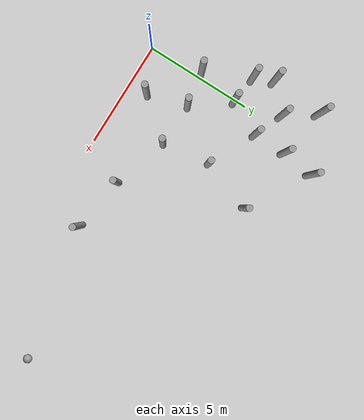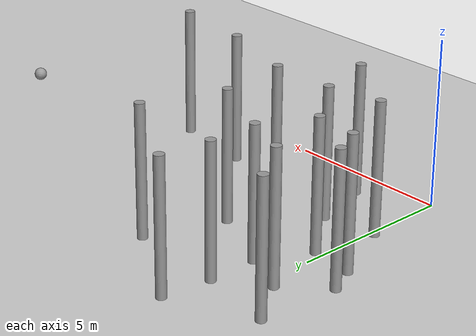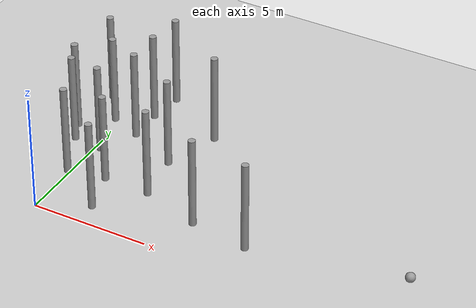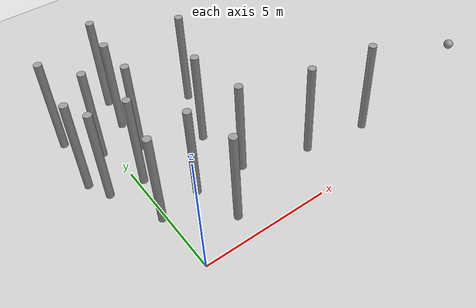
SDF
<sdf version="1.6">
 <world name="default">
  <model name="ground_plane">
   <static>1</static>
   <link name="link">
    <collision name="collision">
     <geometry><plane><normal>0 0 1</normal><size>100 100</size></plane></geometry>
     <surface><friction><ode><mu>100</mu><mu2>50</mu2></ode></friction></surface>
    </collision>
    <visual name="visual">
     <cast_shadows>0</cast_shadows>
     <geometry><plane><normal>0 0 1</normal><size>100 100</size></plane></geometry>
     <material>
      <script><uri>file://media/materials/scripts/gazebo.material</uri><name>Gazebo/Grey</name></script>
     </material>
    </visual>
   </link>
  </model>
  <model name="unit_cylinder_clone_0">
   <link name="link">
    <inertial>
     <mass>1000</mass>
     <inertia><ixx>145.833</ixx><ixy>0</ixy><ixz>0</ixz><iyy>145.833</iyy><iyz>0</iyz><izz>125</izz></inertia>
    </inertial>
    <visual name="visual">
     <geometry><cylinder><radius>0.15</radius><length>4</length></cylinder></geometry>
     <material>
      <script><name>Gazebo/Grey</name><uri>file://media/materials/scripts/gazebo.material</uri></script>
      <shader type="pixel"><normal_map>__default__</normal_map></shader>
      <ambient>0.3 0.3 0.3 1</ambient>
      <diffuse>0.7 0.7 0.7 1</diffuse>
      <specular>0.01 0.01 0.01 1</specular>
      <emissive>0 0 0 1</emissive>
     </material>
    </visual>
    <collision name="collision">
     <geometry><cylinder><radius>0.15</radius><length>4</length></cylinder></geometry>
     <surface>
      <friction>
       <ode><mu>1</mu><mu2>1</mu2><fdir1>0 0 0</fdir1><slip1>0</slip1><slip2>0</slip2></ode>
       <torsional>
        <coefficient>1</coefficient>
        <patch_radius>0</patch_radius>
        <surface_radius>0</surface_radius>
        <use_patch_radius>1</use_patch_radius>
        <ode><slip>0</slip></ode>
       </torsional>
      </friction>
      <bounce><restitution_coefficient>0</restitution_coefficient><threshold>1e+06</threshold></bounce>
      <contact>
       <collide_without_contact>0</collide_without_contact>
       <collide_without_contact_bitmask>1</collide_without_contact_bitmask>
       <collide_bitmask>1</collide_bitmask>
       <ode>
        <soft_cfm>0</soft_cfm>
        <soft_erp>0.2</soft_erp>
        <kp>1e+13</kp>
        <kd>1</kd>
        <max_vel>0.01</max_vel>
        <min_depth>0</min_depth>
       </ode>
       <bullet>
        <split_impulse>1</split_impulse>
        <split_impulse_penetration_threshold>-0.01</split_impulse_penetration_threshold>
        <soft_cfm>0</soft_cfm>
        <soft_erp>0.2</soft_erp>
        <kp>1e+13</kp>
        <kd>1</kd>
       </bullet>
      </contact>
     </surface>
    </collision>
   </link>
   <static>0</static>
   <pose>-0.126051 2.52884 1.99999 0 -0 0.00133</pose>
  </model>
  <model name="unit_cylinder_clone_1">
   <link name="link">
    <inertial>
     <mass>1000</mass>
     <inertia><ixx>145.833</ixx><ixy>0</ixy><ixz>0</ixz><iyy>145.833</iyy><iyz>0</iyz><izz>125</izz></inertia>
    </inertial>
    <visual name="visual">
     <geometry><cylinder><radius>0.15</radius><length>4</length></cylinder></geometry>
     <material>
      <script><name>Gazebo/Grey</name><uri>file://media/materials/scripts/gazebo.material</uri></script>
      <shader type="pixel"><normal_map>__default__</normal_map></shader>
      <ambient>0.3 0.3 0.3 1</ambient>
      <diffuse>0.7 0.7 0.7 1</diffuse>
      <specular>0.01 0.01 0.01 1</specular>
      <emissive>0 0 0 1</emissive>
     </material>
    </visual>
    <collision name="collision">
     <geometry><cylinder><radius>0.15</radius><length>4</length></cylinder></geometry>
     <surface>
      <friction>
       <ode><mu>1</mu><mu2>1</mu2><fdir1>0 0 0</fdir1><slip1>0</slip1><slip2>0</slip2></ode>
       <torsional>
        <coefficient>1</coefficient>
        <patch_radius>0</patch_radius>
        <surface_radius>0</surface_radius>
        <use_patch_radius>1</use_patch_radius>
        <ode><slip>0</slip></ode>
       </torsional>
      </friction>
      <bounce><restitution_coefficient>0</restitution_coefficient><threshold>1e+06</threshold></bounce>
      <contact>
       <collide_without_contact>0</collide_without_contact>
       <collide_without_contact_bitmask>1</collide_without_contact_bitmask>
       <collide_bitmask>1</collide_bitmask>
       <ode>
        <soft_cfm>0</soft_cfm>
        <soft_erp>0.2</soft_erp>
        <kp>1e+13</kp>
        <kd>1</kd>
        <max_vel>0.01</max_vel>
        <min_depth>0</min_depth>
       </ode>
       <bullet>
        <split_impulse>1</split_impulse>
        <split_impulse_penetration_threshold>-0.01</split_impulse_penetration_threshold>
        <soft_cfm>0</soft_cfm>
        <soft_erp>0.2</soft_erp>
        <kp>1e+13</kp>
        <kd>1</kd>
       </bullet>
      </contact>
     </surface>
    </collision>
   </link>
   <static>0</static>
   <pose>1.48874 2.81377 1.99999 0 0 -0.000338</pose>
  </model>
  <model name="unit_cylinder_clone_2">
   <link name="link">
    <inertial>
     <mass>1000</mass>
     <inertia><ixx>145.833</ixx><ixy>0</ixy><ixz>0</ixz><iyy>145.833</iyy><iyz>0</iyz><izz>125</izz></inertia>
    </inertial>
    <visual name="visual">
     <geometry><cylinder><radius>0.15</radius><length>4</length></cylinder></geometry>
     <material>
      <script><name>Gazebo/Grey</name><uri>file://media/materials/scripts/gazebo.material</uri></script>
      <shader type="pixel"><normal_map>__default__</normal_map></shader>
      <ambient>0.3 0.3 0.3 1</ambient>
      <diffuse>0.7 0.7 0.7 1</diffuse>
      <specular>0.01 0.01 0.01 1</specular>
      <emissive>0 0 0 1</emissive>
     </material>
    </visual>
    <collision name="collision">
     <geometry><cylinder><radius>0.15</radius><length>4</length></cylinder></geometry>
     <surface>
      <friction>
       <ode><mu>1</mu><mu2>1</mu2><fdir1>0 0 0</fdir1><slip1>0</slip1><slip2>0</slip2></ode>
       <torsional>
        <coefficient>1</coefficient>
        <patch_radius>0</patch_radius>
        <surface_radius>0</surface_radius>
        <use_patch_radius>1</use_patch_radius>
        <ode><slip>0</slip></ode>
       </torsional>
      </friction>
      <bounce><restitution_coefficient>0</restitution_coefficient><threshold>1e+06</threshold></bounce>
      <contact>
       <collide_without_contact>0</collide_without_contact>
       <collide_without_contact_bitmask>1</collide_without_contact_bitmask>
       <collide_bitmask>1</collide_bitmask>
       <ode>
        <soft_cfm>0</soft_cfm>
        <soft_erp>0.2</soft_erp>
        <kp>1e+13</kp>
        <kd>1</kd>
        <max_vel>0.01</max_vel>
        <min_depth>0</min_depth>
       </ode>
       <bullet>
        <split_impulse>1</split_impulse>
        <split_impulse_penetration_threshold>-0.01</split_impulse_penetration_threshold>
        <soft_cfm>0</soft_cfm>
        <soft_erp>0.2</soft_erp>
        <kp>1e+13</kp>
        <kd>1</kd>
       </bullet>
      </contact>
     </surface>
    </collision>
   </link>
   <static>0</static>
   <pose>-1.07339 4.59004 1.99999 0 -0 0.001251</pose>
  </model>
  <model name="unit_cylinder_clone_3">
   <link name="link">
    <inertial>
     <mass>1000</mass>
     <inertia><ixx>145.833</ixx><ixy>0</ixy><ixz>0</ixz><iyy>145.833</iyy><iyz>0</iyz><izz>125</izz></inertia>
    </inertial>
    <visual name="visual">
     <geometry><cylinder><radius>0.15</radius><length>4</length></cylinder></geometry>
     <material>
      <script><name>Gazebo/Grey</name><uri>file://media/materials/scripts/gazebo.material</uri></script>
      <shader type="pixel"><normal_map>__default__</normal_map></shader>
      <ambient>0.3 0.3 0.3 1</ambient>
      <diffuse>0.7 0.7 0.7 1</diffuse>
      <specular>0.01 0.01 0.01 1</specular>
      <emissive>0 0 0 1</emissive>
     </material>
    </visual>
    <collision name="collision">
     <geometry><cylinder><radius>0.15</radius><length>4</length></cylinder></geometry>
     <surface>
      <friction>
       <ode><mu>1</mu><mu2>1</mu2><fdir1>0 0 0</fdir1><slip1>0</slip1><slip2>0</slip2></ode>
       <torsional>
        <coefficient>1</coefficient>
        <patch_radius>0</patch_radius>
        <surface_radius>0</surface_radius>
        <use_patch_radius>1</use_patch_radius>
        <ode><slip>0</slip></ode>
       </torsional>
      </friction>
      <bounce><restitution_coefficient>0</restitution_coefficient><threshold>1e+06</threshold></bounce>
      <contact>
       <collide_without_contact>0</collide_without_contact>
       <collide_without_contact_bitmask>1</collide_without_contact_bitmask>
       <collide_bitmask>1</collide_bitmask>
       <ode>
        <soft_cfm>0</soft_cfm>
        <soft_erp>0.2</soft_erp>
        <kp>1e+13</kp>
        <kd>1</kd>
        <max_vel>0.01</max_vel>
        <min_depth>0</min_depth>
       </ode>
       <bullet>
        <split_impulse>1</split_impulse>
        <split_impulse_penetration_threshold>-0.01</split_impulse_penetration_threshold>
        <soft_cfm>0</soft_cfm>
        <soft_erp>0.2</soft_erp>
        <kp>1e+13</kp>
        <kd>1</kd>
       </bullet>
      </contact>
     </surface>
    </collision>
   </link>
   <static>0</static>
   <pose>1.00001 6.00007 1.99999 0 -0 0.00126</pose>
  </model>
  <model name="unit_cylinder_clone_18">
   <link name="link">
    <inertial>
     <mass>1000</mass>
     <inertia><ixx>145.833</ixx><ixy>0</ixy><ixz>0</ixz><iyy>145.833</iyy><iyz>0</iyz><izz>125</izz></inertia>
    </inertial>
    <visual name="visual">
     <geometry><cylinder><radius>0.15</radius><length>4</length></cylinder></geometry>
     <material>
      <script><name>Gazebo/Grey</name><uri>file://media/materials/scripts/gazebo.material</uri></script>
      <shader type="pixel"><normal_map>__default__</normal_map></shader>
      <ambient>0.3 0.3 0.3 1</ambient>
      <diffuse>0.7 0.7 0.7 1</diffuse>
      <specular>0.01 0.01 0.01 1</specular>
      <emissive>0 0 0 1</emissive>
     </material>
    </visual>
    <collision name="collision">
     <geometry><cylinder><radius>0.15</radius><length>4</length></cylinder></geometry>
     <surface>
      <friction>
       <ode><mu>1</mu><mu2>1</mu2><fdir1>0 0 0</fdir1><slip1>0</slip1><slip2>0</slip2></ode>
       <torsional>
        <coefficient>1</coefficient>
        <patch_radius>0</patch_radius>
        <surface_radius>0</surface_radius>
        <use_patch_radius>1</use_patch_radius>
        <ode><slip>0</slip></ode>
       </torsional>
      </friction>
      <bounce><restitution_coefficient>0</restitution_coefficient><threshold>1e+06</threshold></bounce>
      <contact>
       <collide_without_contact>0</collide_without_contact>
       <collide_without_contact_bitmask>1</collide_without_contact_bitmask>
       <collide_bitmask>1</collide_bitmask>
       <ode>
        <soft_cfm>0</soft_cfm>
        <soft_erp>0.2</soft_erp>
        <kp>1e+13</kp>
        <kd>1</kd>
        <max_vel>0.01</max_vel>
        <min_depth>0</min_depth>
       </ode>
       <bullet>
        <split_impulse>1</split_impulse>
        <split_impulse_penetration_threshold>-0.01</split_impulse_penetration_threshold>
        <soft_cfm>0</soft_cfm>
        <soft_erp>0.2</soft_erp>
        <kp>1e+13</kp>
        <kd>1</kd>
       </bullet>
      </contact>
     </surface>
    </collision>
   </link>
   <static>0</static>
   <pose>1.18443 9.01135 2 0 -0 0.00132</pose>
  </model>
  <model name="unit_cylinder_clone_20">
   <link name="link">
    <inertial>
     <mass>1000</mass>
     <inertia><ixx>145.833</ixx><ixy>0</ixy><ixz>0</ixz><iyy>145.833</iyy><iyz>0</iyz><izz>125</izz></inertia>
    </inertial>
    <visual name="visual">
     <geometry><cylinder><radius>0.15</radius><length>4</length></cylinder></geometry>
     <material>
      <script><name>Gazebo/Grey</name><uri>file://media/materials/scripts/gazebo.material</uri></script>
      <shader type="pixel"><normal_map>__default__</normal_map></shader>
      <ambient>0.3 0.3 0.3 1</ambient>
      <diffuse>0.7 0.7 0.7 1</diffuse>
      <specular>0.01 0.01 0.01 1</specular>
      <emissive>0 0 0 1</emissive>
     </material>
    </visual>
    <collision name="collision">
     <geometry><cylinder><radius>0.15</radius><length>4</length></cylinder></geometry>
     <surface>
      <friction>
       <ode><mu>1</mu><mu2>1</mu2><fdir1>0 0 0</fdir1><slip1>0</slip1><slip2>0</slip2></ode>
       <torsional>
        <coefficient>1</coefficient>
        <patch_radius>0</patch_radius>
        <surface_radius>0</surface_radius>
        <use_patch_radius>1</use_patch_radius>
        <ode><slip>0</slip></ode>
       </torsional>
      </friction>
      <bounce><restitution_coefficient>0</restitution_coefficient><threshold>1e+06</threshold></bounce>
      <contact>
       <collide_without_contact>0</collide_without_contact>
       <collide_without_contact_bitmask>1</collide_without_contact_bitmask>
       <collide_bitmask>1</collide_bitmask>
       <ode>
        <soft_cfm>0</soft_cfm>
        <soft_erp>0.2</soft_erp>
        <kp>1e+13</kp>
        <kd>1</kd>
        <max_vel>0.01</max_vel>
        <min_depth>0</min_depth>
       </ode>
       <bullet>
        <split_impulse>1</split_impulse>
        <split_impulse_penetration_threshold>-0.01</split_impulse_penetration_threshold>
        <soft_cfm>0</soft_cfm>
        <soft_erp>0.2</soft_erp>
        <kp>1e+13</kp>
        <kd>1</kd>
       </bullet>
      </contact>
     </surface>
    </collision>
   </link>
   <static>0</static>
   <pose>3.9803 7.3232 1.99999 0 -0 0.001389</pose>
  </model>
  <model name="unit_cylinder_clone_21">
   <link name="link">
    <inertial>
     <mass>1000</mass>
     <inertia><ixx>145.833</ixx><ixy>0</ixy><ixz>0</ixz><iyy>145.833</iyy><iyz>0</iyz><izz>125</izz></inertia>
    </inertial>
    <visual name="visual">
     <geometry><cylinder><radius>0.15</radius><length>4</length></cylinder></geometry>
     <material>
      <script><name>Gazebo/Grey</name><uri>file://media/materials/scripts/gazebo.material</uri></script>
      <shader type="pixel"><normal_map>__default__</normal_map></shader>
      <ambient>0.3 0.3 0.3 1</ambient>
      <diffuse>0.7 0.7 0.7 1</diffuse>
      <specular>0.01 0.01 0.01 1</specular>
      <emissive>0 0 0 1</emissive>
     </material>
    </visual>
    <collision name="collision">
     <geometry><cylinder><radius>0.15</radius><length>4</length></cylinder></geometry>
     <surface>
      <friction>
       <ode><mu>1</mu><mu2>1</mu2><fdir1>0 0 0</fdir1><slip1>0</slip1><slip2>0</slip2></ode>
       <torsional>
        <coefficient>1</coefficient>
        <patch_radius>0</patch_radius>
        <surface_radius>0</surface_radius>
        <use_patch_radius>1</use_patch_radius>
        <ode><slip>0</slip></ode>
       </torsional>
      </friction>
      <bounce><restitution_coefficient>0</restitution_coefficient><threshold>1e+06</threshold></bounce>
      <contact>
       <collide_without_contact>0</collide_without_contact>
       <collide_without_contact_bitmask>1</collide_without_contact_bitmask>
       <collide_bitmask>1</collide_bitmask>
       <ode>
        <soft_cfm>0</soft_cfm>
        <soft_erp>0.2</soft_erp>
        <kp>1e+13</kp>
        <kd>1</kd>
        <max_vel>0.01</max_vel>
        <min_depth>0</min_depth>
       </ode>
       <bullet>
        <split_impulse>1</split_impulse>
        <split_impulse_penetration_threshold>-0.01</split_impulse_penetration_threshold>
        <soft_cfm>0</soft_cfm>
        <soft_erp>0.2</soft_erp>
        <kp>1e+13</kp>
        <kd>1</kd>
       </bullet>
      </contact>
     </surface>
    </collision>
   </link>
   <static>0</static>
   <pose>-1.30192 7.90799 1.99999 0 0 -0.000854</pose>
  </model>
  <model name="unit_cylinder_clone_22">
   <link name="link">
    <inertial>
     <mass>1000</mass>
     <inertia><ixx>145.833</ixx><ixy>0</ixy><ixz>0</ixz><iyy>145.833</iyy><iyz>0</iyz><izz>125</izz></inertia>
    </inertial>
    <visual name="visual">
     <geometry><cylinder><radius>0.15</radius><length>4</length></cylinder></geometry>
     <material>
      <script><name>Gazebo/Grey</name><uri>file://media/materials/scripts/gazebo.material</uri></script>
      <shader type="pixel"><normal_map>__default__</normal_map></shader>
      <ambient>0.3 0.3 0.3 1</ambient>
      <diffuse>0.7 0.7 0.7 1</diffuse>
      <specular>0.01 0.01 0.01 1</specular>
      <emissive>0 0 0 1</emissive>
     </material>
    </visual>
    <collision name="collision">
     <geometry><cylinder><radius>0.15</radius><length>4</length></cylinder></geometry>
     <surface>
      <friction>
       <ode><mu>1</mu><mu2>1</mu2><fdir1>0 0 0</fdir1><slip1>0</slip1><slip2>0</slip2></ode>
       <torsional>
        <coefficient>1</coefficient>
        <patch_radius>0</patch_radius>
        <surface_radius>0</surface_radius>
        <use_patch_radius>1</use_patch_radius>
        <ode><slip>0</slip></ode>
       </torsional>
      </friction>
      <bounce><restitution_coefficient>0</restitution_coefficient><threshold>1e+06</threshold></bounce>
      <contact>
       <collide_without_contact>0</collide_without_contact>
       <collide_without_contact_bitmask>1</collide_without_contact_bitmask>
       <collide_bitmask>1</collide_bitmask>
       <ode>
        <soft_cfm>0</soft_cfm>
        <soft_erp>0.2</soft_erp>
        <kp>1e+13</kp>
        <kd>1</kd>
        <max_vel>0.01</max_vel>
        <min_depth>0</min_depth>
       </ode>
       <bullet>
        <split_impulse>1</split_impulse>
        <split_impulse_penetration_threshold>-0.01</split_impulse_penetration_threshold>
        <soft_cfm>0</soft_cfm>
        <soft_erp>0.2</soft_erp>
        <kp>1e+13</kp>
        <kd>1</kd>
       </bullet>
      </contact>
     </surface>
    </collision>
   </link>
   <static>0</static>
   <pose>0.989173 7.51328 2 0 -0 0.001145</pose>
  </model>
  <model name="unit_cylinder_clone_23">
   <link name="link">
    <inertial>
     <mass>1000</mass>
     <inertia><ixx>145.833</ixx><ixy>0</ixy><ixz>0</ixz><iyy>145.833</iyy><iyz>0</iyz><izz>125</izz></inertia>
    </inertial>
    <visual name="visual">
     <geometry><cylinder><radius>0.15</radius><length>4</length></cylinder></geometry>
     <material>
      <script><name>Gazebo/Grey</name><uri>file://media/materials/scripts/gazebo.material</uri></script>
      <shader type="pixel"><normal_map>__default__</normal_map></shader>
      <ambient>0.3 0.3 0.3 1</ambient>
      <diffuse>0.7 0.7 0.7 1</diffuse>
      <specular>0.01 0.01 0.01 1</specular>
      <emissive>0 0 0 1</emissive>
     </material>
    </visual>
    <collision name="collision">
     <geometry><cylinder><radius>0.15</radius><length>4</length></cylinder></geometry>
     <surface>
      <friction>
       <ode><mu>1</mu><mu2>1</mu2><fdir1>0 0 0</fdir1><slip1>0</slip1><slip2>0</slip2></ode>
       <torsional>
        <coefficient>1</coefficient>
        <patch_radius>0</patch_radius>
        <surface_radius>0</surface_radius>
        <use_patch_radius>1</use_patch_radius>
        <ode><slip>0</slip></ode>
       </torsional>
      </friction>
      <bounce><restitution_coefficient>0</restitution_coefficient><threshold>1e+06</threshold></bounce>
      <contact>
       <collide_without_contact>0</collide_without_contact>
       <collide_without_contact_bitmask>1</collide_without_contact_bitmask>
       <collide_bitmask>1</collide_bitmask>
       <ode>
        <soft_cfm>0</soft_cfm>
        <soft_erp>0.2</soft_erp>
        <kp>1e+13</kp>
        <kd>1</kd>
        <max_vel>0.01</max_vel>
        <min_depth>0</min_depth>
       </ode>
       <bullet>
        <split_impulse>1</split_impulse>
        <split_impulse_penetration_threshold>-0.01</split_impulse_penetration_threshold>
        <soft_cfm>0</soft_cfm>
        <soft_erp>0.2</soft_erp>
        <kp>1e+13</kp>
        <kd>1</kd>
       </bullet>
      </contact>
     </surface>
    </collision>
   </link>
   <static>0</static>
   <pose>0.228998 4.44918 1.99999 0 -0 0.000973</pose>
  </model>
  <model name="unit_cylinder_clone_24">
   <link name="link">
    <inertial>
     <mass>1000</mass>
     <inertia><ixx>145.833</ixx><ixy>0</ixy><ixz>0</ixz><iyy>145.833</iyy><iyz>0</iyz><izz>125</izz></inertia>
    </inertial>
    <visual name="visual">
     <geometry><cylinder><radius>0.15</radius><length>4</length></cylinder></geometry>
     <material>
      <script><name>Gazebo/Grey</name><uri>file://media/materials/scripts/gazebo.material</uri></script>
      <shader type="pixel"><normal_map>__default__</normal_map></shader>
      <ambient>0.3 0.3 0.3 1</ambient>
      <diffuse>0.7 0.7 0.7 1</diffuse>
      <specular>0.01 0.01 0.01 1</specular>
      <emissive>0 0 0 1</emissive>
     </material>
    </visual>
    <collision name="collision">
     <geometry><cylinder><radius>0.15</radius><length>4</length></cylinder></geometry>
     <surface>
      <friction>
       <ode><mu>1</mu><mu2>1</mu2><fdir1>0 0 0</fdir1><slip1>0</slip1><slip2>0</slip2></ode>
       <torsional>
        <coefficient>1</coefficient>
        <patch_radius>0</patch_radius>
        <surface_radius>0</surface_radius>
        <use_patch_radius>1</use_patch_radius>
        <ode><slip>0</slip></ode>
       </torsional>
      </friction>
      <bounce><restitution_coefficient>0</restitution_coefficient><threshold>1e+06</threshold></bounce>
      <contact>
       <collide_without_contact>0</collide_without_contact>
       <collide_without_contact_bitmask>1</collide_without_contact_bitmask>
       <collide_bitmask>1</collide_bitmask>
       <ode>
        <soft_cfm>0</soft_cfm>
        <soft_erp>0.2</soft_erp>
        <kp>1e+13</kp>
        <kd>1</kd>
        <max_vel>0.01</max_vel>
        <min_depth>0</min_depth>
       </ode>
       <bullet>
        <split_impulse>1</split_impulse>
        <split_impulse_penetration_threshold>-0.01</split_impulse_penetration_threshold>
        <soft_cfm>0</soft_cfm>
        <soft_erp>0.2</soft_erp>
        <kp>1e+13</kp>
        <kd>1</kd>
       </bullet>
      </contact>
     </surface>
    </collision>
   </link>
   <static>0</static>
   <pose>3.1593 4.96127 2 0 -0 0.000918</pose>
  </model>
  <model name="unit_cylinder_clone_25">
   <link name="link">
    <inertial>
     <mass>1000</mass>
     <inertia><ixx>145.833</ixx><ixy>0</ixy><ixz>0</ixz><iyy>145.833</iyy><iyz>0</iyz><izz>125</izz></inertia>
    </inertial>
    <visual name="visual">
     <geometry><cylinder><radius>0.15</radius><length>4</length></cylinder></geometry>
     <material>
      <script><name>Gazebo/Grey</name><uri>file://media/materials/scripts/gazebo.material</uri></script>
      <shader type="pixel"><normal_map>__default__</normal_map></shader>
      <ambient>0.3 0.3 0.3 1</ambient>
      <diffuse>0.7 0.7 0.7 1</diffuse>
      <specular>0.01 0.01 0.01 1</specular>
      <emissive>0 0 0 1</emissive>
     </material>
    </visual>
    <collision name="collision">
     <geometry><cylinder><radius>0.15</radius><length>4</length></cylinder></geometry>
     <surface>
      <friction>
       <ode><mu>1</mu><mu2>1</mu2><fdir1>0 0 0</fdir1><slip1>0</slip1><slip2>0</slip2></ode>
       <torsional>
        <coefficient>1</coefficient>
        <patch_radius>0</patch_radius>
        <surface_radius>0</surface_radius>
        <use_patch_radius>1</use_patch_radius>
        <ode><slip>0</slip></ode>
       </torsional>
      </friction>
      <bounce><restitution_coefficient>0</restitution_coefficient><threshold>1e+06</threshold></bounce>
      <contact>
       <collide_without_contact>0</collide_without_contact>
       <collide_without_contact_bitmask>1</collide_without_contact_bitmask>
       <collide_bitmask>1</collide_bitmask>
       <ode>
        <soft_cfm>0</soft_cfm>
        <soft_erp>0.2</soft_erp>
        <kp>1e+13</kp>
        <kd>1</kd>
        <max_vel>0.01</max_vel>
        <min_depth>0</min_depth>
       </ode>
       <bullet>
        <split_impulse>1</split_impulse>
        <split_impulse_penetration_threshold>-0.01</split_impulse_penetration_threshold>
        <soft_cfm>0</soft_cfm>
        <soft_erp>0.2</soft_erp>
        <kp>1e+13</kp>
        <kd>1</kd>
       </bullet>
      </contact>
     </surface>
    </collision>
   </link>
   <static>0</static>
   <pose>-1.48648 5.46286 2 0 -0 0.001333</pose>
  </model>
  <model name="unit_cylinder_clone_28">
   <link name="link">
    <inertial>
     <mass>1000</mass>
     <inertia><ixx>145.833</ixx><ixy>0</ixy><ixz>0</ixz><iyy>145.833</iyy><iyz>0</iyz><izz>125</izz></inertia>
    </inertial>
    <visual name="visual">
     <geometry><cylinder><radius>0.15</radius><length>4</length></cylinder></geometry>
     <material>
      <script><name>Gazebo/Grey</name><uri>file://media/materials/scripts/gazebo.material</uri></script>
      <shader type="pixel"><normal_map>__default__</normal_map></shader>
      <ambient>0.3 0.3 0.3 1</ambient>
      <diffuse>0.7 0.7 0.7 1</diffuse>
      <specular>0.01 0.01 0.01 1</specular>
      <emissive>0 0 0 1</emissive>
     </material>
    </visual>
    <collision name="collision">
     <geometry><cylinder><radius>0.15</radius><length>4</length></cylinder></geometry>
     <surface>
      <friction>
       <ode><mu>1</mu><mu2>1</mu2><fdir1>0 0 0</fdir1><slip1>0</slip1><slip2>0</slip2></ode>
       <torsional>
        <coefficient>1</coefficient>
        <patch_radius>0</patch_radius>
        <surface_radius>0</surface_radius>
        <use_patch_radius>1</use_patch_radius>
        <ode><slip>0</slip></ode>
       </torsional>
      </friction>
      <bounce><restitution_coefficient>0</restitution_coefficient><threshold>1e+06</threshold></bounce>
      <contact>
       <collide_without_contact>0</collide_without_contact>
       <collide_without_contact_bitmask>1</collide_without_contact_bitmask>
       <collide_bitmask>1</collide_bitmask>
       <ode>
        <soft_cfm>0</soft_cfm>
        <soft_erp>0.2</soft_erp>
        <kp>1e+13</kp>
        <kd>1</kd>
        <max_vel>0.01</max_vel>
        <min_depth>0</min_depth>
       </ode>
       <bullet>
        <split_impulse>1</split_impulse>
        <split_impulse_penetration_threshold>-0.01</split_impulse_penetration_threshold>
        <soft_cfm>0</soft_cfm>
        <soft_erp>0.2</soft_erp>
        <kp>1e+13</kp>
        <kd>1</kd>
       </bullet>
      </contact>
     </surface>
    </collision>
   </link>
   <static>0</static>
   <pose>2.00001 1.00007 1.99999 0 -0 0.001399</pose>
  </model>
  <model name="unit_cylinder_clone_29">
   <link name="link">
    <inertial>
     <mass>1000</mass>
     <inertia><ixx>145.833</ixx><ixy>0</ixy><ixz>0</ixz><iyy>145.833</iyy><iyz>0</iyz><izz>125</izz></inertia>
    </inertial>
    <visual name="visual">
     <geometry><cylinder><radius>0.15</radius><length>4</length></cylinder></geometry>
     <material>
      <script><name>Gazebo/Grey</name><uri>file://media/materials/scripts/gazebo.material</uri></script>
      <shader type="pixel"><normal_map>__default__</normal_map></shader>
      <ambient>0.3 0.3 0.3 1</ambient>
      <diffuse>0.7 0.7 0.7 1</diffuse>
      <specular>0.01 0.01 0.01 1</specular>
      <emissive>0 0 0 1</emissive>
     </material>
    </visual>
    <collision name="collision">
     <geometry><cylinder><radius>0.15</radius><length>4</length></cylinder></geometry>
     <surface>
      <friction>
       <ode><mu>1</mu><mu2>1</mu2><fdir1>0 0 0</fdir1><slip1>0</slip1><slip2>0</slip2></ode>
       <torsional>
        <coefficient>1</coefficient>
        <patch_radius>0</patch_radius>
        <surface_radius>0</surface_radius>
        <use_patch_radius>1</use_patch_radius>
        <ode><slip>0</slip></ode>
       </torsional>
      </friction>
      <bounce><restitution_coefficient>0</restitution_coefficient><threshold>1e+06</threshold></bounce>
      <contact>
       <collide_without_contact>0</collide_without_contact>
       <collide_without_contact_bitmask>1</collide_without_contact_bitmask>
       <collide_bitmask>1</collide_bitmask>
       <ode>
        <soft_cfm>0</soft_cfm>
        <soft_erp>0.2</soft_erp>
        <kp>1e+13</kp>
        <kd>1</kd>
        <max_vel>0.01</max_vel>
        <min_depth>0</min_depth>
       </ode>
       <bullet>
        <split_impulse>1</split_impulse>
        <split_impulse_penetration_threshold>-0.01</split_impulse_penetration_threshold>
        <soft_cfm>0</soft_cfm>
        <soft_erp>0.2</soft_erp>
        <kp>1e+13</kp>
        <kd>1</kd>
       </bullet>
      </contact>
     </surface>
    </collision>
   </link>
   <static>0</static>
   <pose>6 2.00007 1.99999 0 -0 0.001446</pose>
  </model>
  <model name="unit_cylinder_clone_35">
   <link name="link">
    <inertial>
     <mass>1000</mass>
     <inertia><ixx>145.833</ixx><ixy>0</ixy><ixz>0</ixz><iyy>145.833</iyy><iyz>0</iyz><izz>125</izz></inertia>
    </inertial>
    <visual name="visual">
     <geometry><cylinder><radius>0.15</radius><length>4</length></cylinder></geometry>
     <material>
      <script><name>Gazebo/Grey</name><uri>file://media/materials/scripts/gazebo.material</uri></script>
      <shader type="pixel"><normal_map>__default__</normal_map></shader>
      <ambient>0.3 0.3 0.3 1</ambient>
      <diffuse>0.7 0.7 0.7 1</diffuse>
      <specular>0.01 0.01 0.01 1</specular>
      <emissive>0 0 0 1</emissive>
     </material>
    </visual>
    <collision name="collision">
     <geometry><cylinder><radius>0.15</radius><length>4</length></cylinder></geometry>
     <surface>
      <friction>
       <ode><mu>1</mu><mu2>1</mu2><fdir1>0 0 0</fdir1><slip1>0</slip1><slip2>0</slip2></ode>
       <torsional>
        <coefficient>1</coefficient>
        <patch_radius>0</patch_radius>
        <surface_radius>0</surface_radius>
        <use_patch_radius>1</use_patch_radius>
        <ode><slip>0</slip></ode>
       </torsional>
      </friction>
      <bounce><restitution_coefficient>0</restitution_coefficient><threshold>1e+06</threshold></bounce>
      <contact>
       <collide_without_contact>0</collide_without_contact>
       <collide_without_contact_bitmask>1</collide_without_contact_bitmask>
       <collide_bitmask>1</collide_bitmask>
       <ode>
        <soft_cfm>0</soft_cfm>
        <soft_erp>0.2</soft_erp>
        <kp>1e+13</kp>
        <kd>1</kd>
        <max_vel>0.01</max_vel>
        <min_depth>0</min_depth>
       </ode>
       <bullet>
        <split_impulse>1</split_impulse>
        <split_impulse_penetration_threshold>-0.01</split_impulse_penetration_threshold>
        <soft_cfm>0</soft_cfm>
        <soft_erp>0.2</soft_erp>
        <kp>1e+13</kp>
        <kd>1</kd>
       </bullet>
      </contact>
     </surface>
    </collision>
   </link>
   <static>0</static>
   <pose>8.50965 1.63069 2 0 -0 0.001365</pose>
  </model>
  <model name="unit_cylinder_clone_37">
   <link name="link">
    <inertial>
     <mass>1000</mass>
     <inertia><ixx>145.833</ixx><ixy>0</ixy><ixz>0</ixz><iyy>145.833</iyy><iyz>0</iyz><izz>125</izz></inertia>
    </inertial>
    <visual name="visual">
     <geometry><cylinder><radius>0.15</radius><length>4</length></cylinder></geometry>
     <material>
      <script><name>Gazebo/Grey</name><uri>file://media/materials/scripts/gazebo.material</uri></script>
      <shader type="pixel"><normal_map>__default__</normal_map></shader>
      <ambient>0.3 0.3 0.3 1</ambient>
      <diffuse>0.7 0.7 0.7 1</diffuse>
      <specular>0.01 0.01 0.01 1</specular>
      <emissive>0 0 0 1</emissive>
     </material>
    </visual>
    <collision name="collision">
     <geometry><cylinder><radius>0.15</radius><length>4</length></cylinder></geometry>
     <surface>
      <friction>
       <ode><mu>1</mu><mu2>1</mu2><fdir1>0 0 0</fdir1><slip1>0</slip1><slip2>0</slip2></ode>
       <torsional>
        <coefficient>1</coefficient>
        <patch_radius>0</patch_radius>
        <surface_radius>0</surface_radius>
        <use_patch_radius>1</use_patch_radius>
        <ode><slip>0</slip></ode>
       </torsional>
      </friction>
      <bounce><restitution_coefficient>0</restitution_coefficient><threshold>1e+06</threshold></bounce>
      <contact>
       <collide_without_contact>0</collide_without_contact>
       <collide_without_contact_bitmask>1</collide_without_contact_bitmask>
       <collide_bitmask>1</collide_bitmask>
       <ode>
        <soft_cfm>0</soft_cfm>
        <soft_erp>0.2</soft_erp>
        <kp>1e+13</kp>
        <kd>1</kd>
        <max_vel>0.01</max_vel>
        <min_depth>0</min_depth>
       </ode>
       <bullet>
        <split_impulse>1</split_impulse>
        <split_impulse_penetration_threshold>-0.01</split_impulse_penetration_threshold>
        <soft_cfm>0</soft_cfm>
        <soft_erp>0.2</soft_erp>
        <kp>1e+13</kp>
        <kd>1</kd>
       </bullet>
      </contact>
     </surface>
    </collision>
   </link>
   <static>0</static>
   <pose>3.48251 2.78637 1.99999 0 -0 0.001374</pose>
  </model>
  <model name="unit_cylinder_clone_21_clone">
   <link name="link">
    <inertial>
     <mass>1000</mass>
     <inertia><ixx>145.833</ixx><ixy>0</ixy><ixz>0</ixz><iyy>145.833</iyy><iyz>0</iyz><izz>125</izz></inertia>
    </inertial>
    <visual name="visual">
     <geometry><cylinder><radius>0.15</radius><length>4</length></cylinder></geometry>
     <material>
      <script><name>Gazebo/Grey</name><uri>file://media/materials/scripts/gazebo.material</uri></script>
      <shader type="pixel"><normal_map>__default__</normal_map></shader>
      <ambient>0.3 0.3 0.3 1</ambient>
      <diffuse>0.7 0.7 0.7 1</diffuse>
      <specular>0.01 0.01 0.01 1</specular>
      <emissive>0 0 0 1</emissive>
     </material>
    </visual>
    <collision name="collision">
     <geometry><cylinder><radius>0.15</radius><length>4</length></cylinder></geometry>
     <surface>
      <friction>
       <ode><mu>1</mu><mu2>1</mu2><fdir1>0 0 0</fdir1><slip1>0</slip1><slip2>0</slip2></ode>
       <torsional>
        <coefficient>1</coefficient>
        <patch_radius>0</patch_radius>
        <surface_radius>0</surface_radius>
        <use_patch_radius>1</use_patch_radius>
        <ode><slip>0</slip></ode>
       </torsional>
      </friction>
      <bounce><restitution_coefficient>0</restitution_coefficient><threshold>1e+06</threshold></bounce>
      <contact>
       <collide_without_contact>0</collide_without_contact>
       <collide_without_contact_bitmask>1</collide_without_contact_bitmask>
       <collide_bitmask>1</collide_bitmask>
       <ode>
        <soft_cfm>0</soft_cfm>
        <soft_erp>0.2</soft_erp>
        <kp>1e+13</kp>
        <kd>1</kd>
        <max_vel>0.01</max_vel>
        <min_depth>0</min_depth>
       </ode>
       <bullet>
        <split_impulse>1</split_impulse>
        <split_impulse_penetration_threshold>-0.01</split_impulse_penetration_threshold>
        <soft_cfm>0</soft_cfm>
        <soft_erp>0.2</soft_erp>
        <kp>1e+13</kp>
        <kd>1</kd>
       </bullet>
      </contact>
     </surface>
    </collision>
   </link>
   <static>0</static>
   <pose>-0.342059 6.54808 1.99999 0 -0 0.001413</pose>
  </model>
  <model name="unit_sphere">
   <link name="link">
    <inertial>
     <mass>1</mass>
     <inertia><ixx>0.1</ixx><ixy>0</ixy><ixz>0</ixz><iyy>0.1</iyy><iyz>0</iyz><izz>0.1</izz></inertia>
    </inertial>
    <gravity>0</gravity>
    <visual name="visual">
     <geometry><sphere><radius>0.203941</radius></sphere></geometry>
     <material>
      <script><name>Gazebo/Grey</name><uri>file://media/materials/scripts/gazebo.material</uri></script>
      <shader type="pixel"><normal_map>__default__</normal_map></shader>
     </material>
    </visual>
    <collision name="collision">
     <geometry><sphere><radius>0.203941</radius></sphere></geometry>
     <surface>
      <friction>
       <ode><mu>1</mu><mu2>1</mu2><fdir1>0 0 0</fdir1><slip1>0</slip1><slip2>0</slip2></ode>
       <torsional>
        <coefficient>1</coefficient>
        <patch_radius>0</patch_radius>
        <surface_radius>0</surface_radius>
        <use_patch_radius>1</use_patch_radius>
        <ode><slip>0</slip></ode>
       </torsional>
      </friction>
      <bounce><restitution_coefficient>0</restitution_coefficient><threshold>1e+06</threshold></bounce>
      <contact>
       <collide_without_contact>0</collide_without_contact>
       <collide_without_contact_bitmask>1</collide_without_contact_bitmask>
       <collide_bitmask>1</collide_bitmask>
       <ode>
        <soft_cfm>0</soft_cfm>
        <soft_erp>0.2</soft_erp>
        <kp>1e+13</kp>
        <kd>1</kd>
        <max_vel>0.01</max_vel>
        <min_depth>0</min_depth>
       </ode>
       <bullet>
        <split_impulse>1</split_impulse>
        <split_impulse_penetration_threshold>-0.01</split_impulse_penetration_threshold>
        <soft_cfm>0</soft_cfm>
        <soft_erp>0.2</soft_erp>
        <kp>1e+13</kp>
        <kd>1</kd>
       </bullet>
      </contact>
     </surface>
    </collision>
   </link>
   <static>0</static>
   <pose>14.9329 2.79253 0.348131 0 -0 0</pose>
  </model>
 </world>
</sdf>
